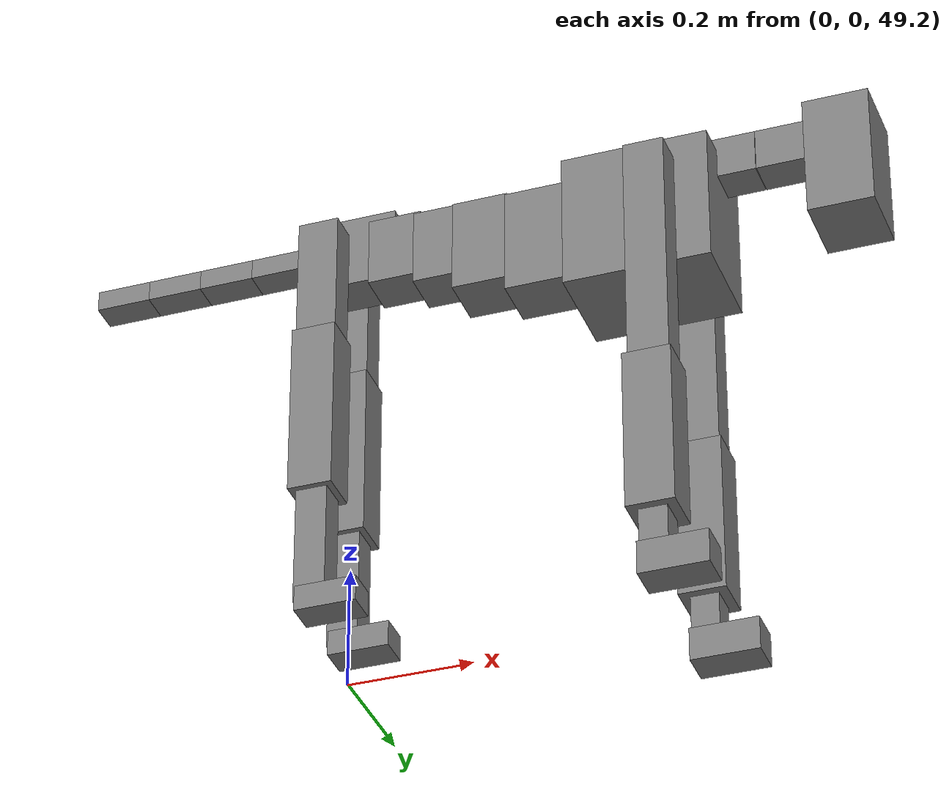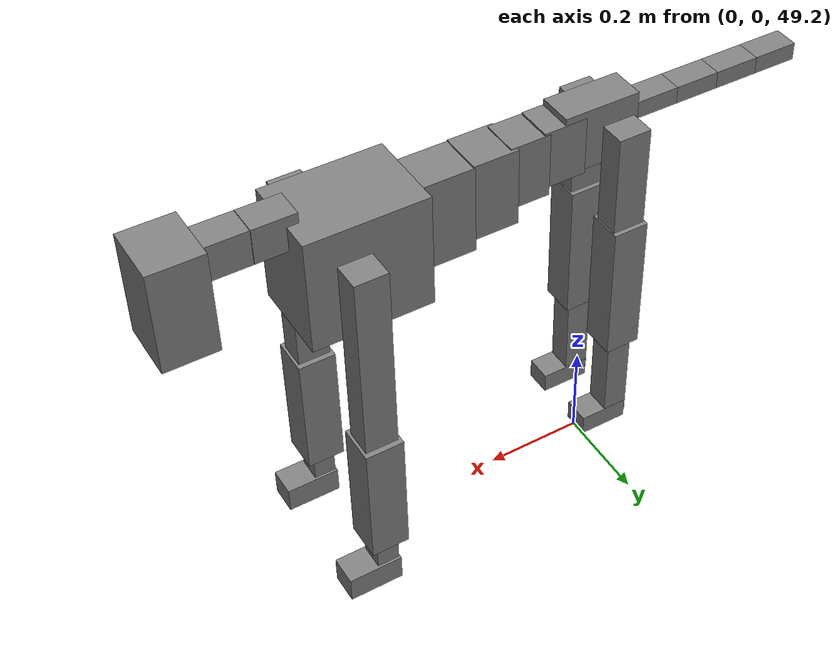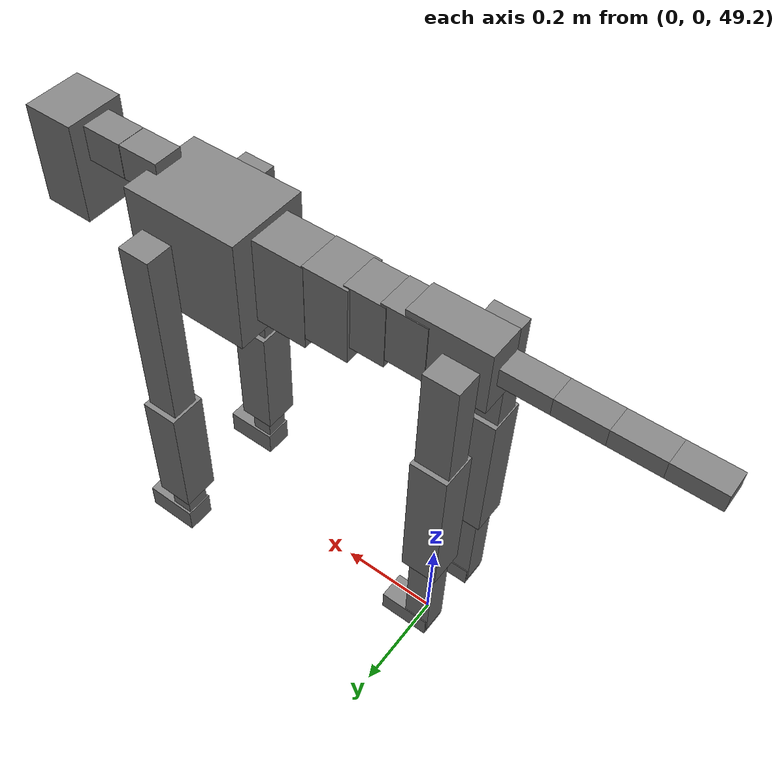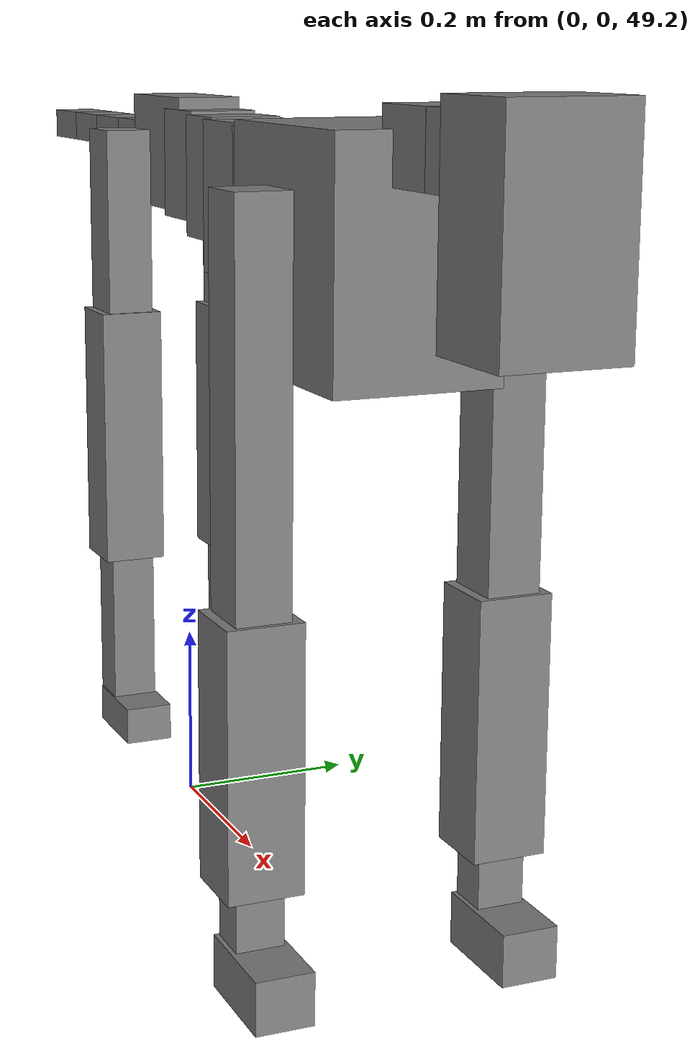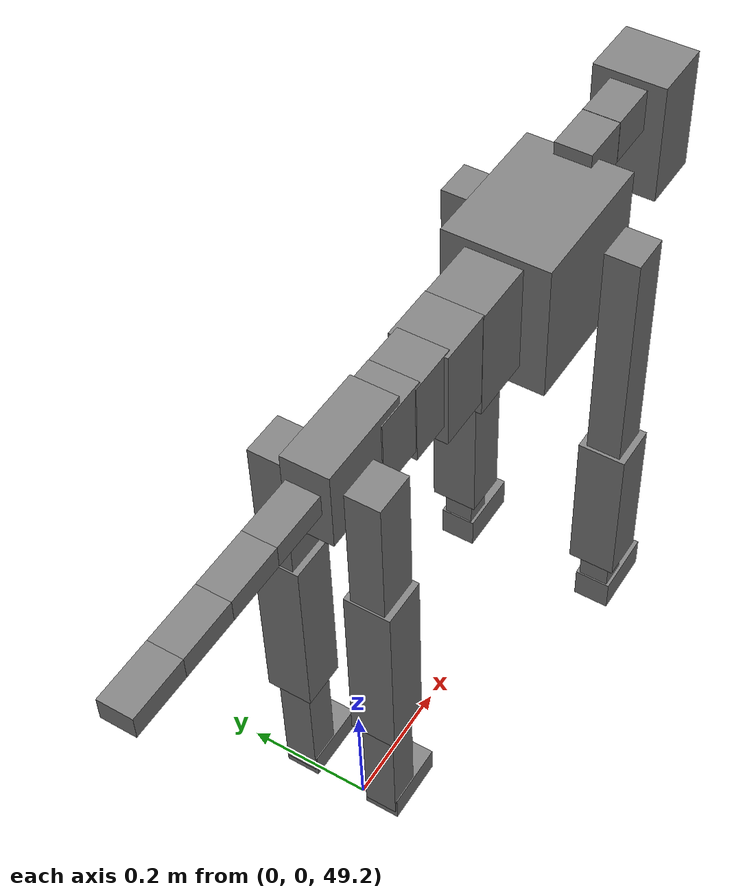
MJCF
<mujoco model="dog">

    <default>
        <joint armature="0.02" stiffness="1" damping="0.2" limited="true"/>
        <geom condim="3" friction="1 0.05 0.05" margin="0.01"/>
        <motor ctrllimited="true" ctrlrange="-1.0 1.0" forcelimited="true" gear="50"/>
    </default>

    <compiler inertiafromgeom="true" angle="radian"/>

    <option timestep="0.016" iterations="50" tolerance="1e-10" solver="Newton" jacobian="dense" cone="pyramidal"/>

    <size nconmax="20000" njmax="60000" nstack="5000000"/>
    <visual>
        <map force="0.1" zfar="30"/>
        <rgba haze="0.15 0.25 0.35 1"/>
        <quality shadowsize="2048"/>
        <global offwidth="800" offheight="800"/>
    </visual>

    <asset>
        <texture type="skybox" builtin="gradient" rgb1="0.3 0.5 0.7" rgb2="0 0 0" width="512" height="512"/>
        <texture name="texplane" type="2d" builtin="checker" rgb1=".2 .3 .4" rgb2=".1 0.15 0.2" width="512" height="512"
                 mark="cross" markrgb=".8 .8 .8"/>
        <texture name="texgeom" type="cube" builtin="flat" mark="cross" width="127" height="1278" rgb1="0.8 0.6 0.4"
                 rgb2="0.8 0.6 0.4" markrgb="1 1 1" random="0.01"/>

        <material name="matplane" reflectance="0.3" texture="texplane" texrepeat="1 1" texuniform="true"/>
        <material name="matgeom" texture="texgeom" texuniform="true" rgba="0.8 0.6 .4 1"/>
    </asset>

    <worldbody>
        <geom name="floor" pos="0 0 0" size="0 0 .25" type="plane" material="matplane" condim="3"/>

        <light directional="false" diffuse=".2 .2 .2" specular="0 0 0" pos="0 0 5" dir="0 0 -1" castshadow="false"/>
        <light mode="targetbodycom" target="torso" directional="false" diffuse=".8 .8 .8" specular="0.3 0.3 0.3"
               pos="0 0 4.0" dir="0 0 -1"/>

        <body name="root" pos="0 0 50">
            <freejoint name="root_1"/>
            <geom type="box" pos="0 0 -0.02" size="0.0774  0.0358  0.063" density="2030"/>

            <body name="spine1" pos="0.054 0 0">
                <joint name="spine1_y" axis="0 1 0" range="0 0.7" limited="true"/>
                <geom type="box" pos="0.02375 0 -0.03" size="0.04375  0.0375  0.05985" density="2030"/>

                <body name="spine2" pos="0.0612 0 0">
                    <joint name="spine2_y" axis="0 1 0" range="-0.15 0.15" limited="true"/>
                    <geom type="box" pos="0.03555  0  -0.04" size="0.04055  0.039  0.06615" density="2030"/>

                    <body name="spine3" pos="0.0730 0 0">
                        <joint name="spine3_y" axis="0 1 0" range="-0.15 0.15" limited="true"/>
                        <geom type="box" pos="0.03555  0  -0.057" size="0.04555  0.0445  0.081" density="2030"/>

                        <body name="spine4" pos="0.0780 0 0">
                            <joint name="spine4_y" axis="0 1 0" range="-0.15 0.15" limited="true"/>
                            <geom type="box" pos="0.05265  0  -0.07" size="0.05265  0.045  0.09135" density="2030"/>

                            <body name="torso" pos="0.1082 0 0">
                                <joint name="torso_y" axis="0 1 0" range="-0.15 0.15" limited="true"/>
                                <geom type="box" pos="0.11925  0  -0.085" size="0.11925  0.085  0.11745"
                                      density="2030"/>

                                <body name="neck1" pos="0.2160  0   0.0180">
                                    <joint name="neck1_y" axis="0 1 0" range="-1.2  -1" limited="true"/>
                                    <geom type="box" pos="0.0423  0  0" size="0.0423  0.03  0.036" density="2325"/>

                                    <body name="neck2" pos="0.0853  0  0">
                                        <joint name="neck2_y" axis="0 1 0" range="0.1  0" limited="true"/>
                                        <geom type="box" pos="0.0423  0  0" size="0.0423  0.03  0.036" density="2325"/>

                                        <body name="head" pos="0.0853  0  0">
                                            <joint name="head_y" axis="0 1 0" range="-0.3  -0.2" limited="true"/>
                                            <geom type="box" pos="0.0531  0  -0.055" size="0.0531  0.06  0.1044"
                                                  density="4030"/>

                                        </body>
                                    </body>
                                </body>

                                <body name="front_shoulder" pos="0.156  0   -0.0480">
                                    <joint name="front_shoulder_y" axis="0 1 0" range="-1 1.5" limited="true"/>
                                    <geom type="box" pos="0 0.13 -0.1846" size="0.0327  0.0280  0.2112" density="1158"/>
                                    <geom type="box" pos="0 -0.13 -0.1846" size="0.0327  0.0280  0.2112"
                                          density="1158"/>

                                    <body name="front_elbow" pos="0  0  -0.3692">
                                        <joint name="front_elbow_y" axis="0 1 0" range="-2 0" limited="true"/>
                                        <geom type="box" pos="0 0.13 -0.1352" size="0.0382  0.0390  0.1352"
                                              density="1081"/>
                                        <geom type="box" pos="0 -0.13 -0.1352" size="0.0382  0.0390  0.1352"
                                              density="1081"/>

                                        <body name="front_wrist" pos="0  0  -0.2704">
                                            <joint name="front_wrist_y" axis="0 1 0" range="-0.2 0" limited="true"/>
                                            <geom type="box" pos="0 0.13 -0.0359" size="0.0225  0.0250  0.0491"
                                                  density="1664"/>
                                            <geom type="box" pos="0 -0.13 -0.0359" size="0.0225  0.0250  0.0491"
                                                  density="1664"/>

                                            <body name="front_finger_end" pos="0  0  -0.0718">
                                                <joint name="front_finger_y" axis="0 1 0" range="-0.4 1"
                                                       limited="true"/>
                                                <geom type="box" pos="0.0300  0.13  -0.0125"
                                                      size="0.0550  0.0300  0.0275" density="1515"/>
                                                <geom type="box" pos="0.0300  -0.13  -0.0125"
                                                      size="0.0550  0.0300  0.0275" density="1515"/>

                                            </body>

                                        </body>
                                    </body>
                                </body>

                            </body>
                        </body>
                    </body>
                </body>
            </body>

            <body name="back_hip" pos="-0.03 0 -0.018">
                <joint name="back_hip_y" axis="0 1 0" range="-1.5 0.3" limited="true"/>
                <geom type="box" pos="0 0.07 -0.1008" size="0.0330  0.0259  0.1236" density="1154"/>
                <geom type="box" pos="0 -0.07 -0.1008" size="0.0330  0.0259  0.1236" density="1154"/>

                <body name="back_knee" pos="0  0  -0.2015">
                    <joint name="back_knee_y" axis="0 1 0" range="0 2.8" limited="true"/>
                    <geom type="box" pos="0 0.07 -0.1321" size="0.0357  0.0352  0.1476" density="1227"/>
                    <geom type="box" pos="0 -0.07 -0.1321" size="0.0357  0.0352  0.1476" density="1227"/>

                    <body name="back_ankle" pos="0  0  -0.2641">
                        <joint name="back_ankle_y" axis="0 1 0" range="-2.2 0" limited="true"/>
                        <geom type="box" pos="0 0.07 -0.1015" size="0.0252  0.0252  0.1127" density="1284"/>
                        <geom type="box" pos="0 -0.07 -0.1015" size="0.0252  0.0252  0.1127" density="1284"/>

                        <body name="back_toe_end" pos="0  0  -0.2029">
                            <joint name="back_toe_y" axis="0 1 0" range="-0.4 1" limited="true"/>
                            <geom type="box" pos="0.0270  0.07  -0.0061" size="0.0496  0.0270  0.0211" density="1515"/>
                            <geom type="box" pos="0.0270  -0.07  -0.0061" size="0.0496  0.0270  0.0211" density="1515"/>

                        </body>
                    </body>
                </body>
            </body>

            <body name="tail1" pos="-0.074 0 -0.006">
                <joint name="tail1_y" axis="0 1 0" range="-0.2 0.2" limited="true"/>
                <geom type="box" pos="-0.0536  0  0" size="0.045  0.025  0.0175" density="1587"/>

                <body name="tail2" pos="-0.09 0 0">
                    <joint name="tail2_y" axis="0 1 0" range="-0.2 0.2" limited="true"/>
                    <geom type="box" pos="-0.0536  0  0" size="0.045  0.025  0.0175" density="1587"/>

                    <body name="tail3" pos="-0.09 0 0">
                        <joint name="tail3_y" axis="0 1 0" range="-0.2 0.2" limited="true"/>
                        <geom type="box" pos="-0.0536  0  0" size="0.045  0.025  0.0175" density="1587"/>

                        <body name="tail4" pos="-0.09 0 0">
                            <joint name="tail4_y" axis="0 1 0" range="-0.2 0.2" limited="true"/>
                            <geom type="box" pos="-0.0536  0  0" size="0.045  0.025  0.0175" density="1587"/>

                        </body>
                    </body>
                </body>
            </body>
        </body>
    </worldbody>

    <actuator>
        <motor joint="spine1_y" forcerange="-150 150     "/>
        <motor joint="spine2_y" forcerange="-150 150     "/>
        <motor joint="spine3_y" forcerange="-150 150     "/>
        <motor joint="spine4_y" forcerange="-150 150     "/>
        <motor joint="torso_y" forcerange="-150 150     "/>
        <motor joint="neck1_y" forcerange="-100 100       "/>
        <motor joint="neck2_y" forcerange="-100 100       "/>
        <motor joint="head_y" forcerange="-150 150       "/>
        <motor joint="front_shoulder_y" forcerange="-145.01 141.33"/>
        <motor joint="front_elbow_y" forcerange="-197.74 185.93"/>
        <motor joint="front_wrist_y" forcerange="-74.02 126.28"/>
        <motor joint="front_finger_y" forcerange="-32.05 88.07"/>
        <motor joint="back_hip_y" forcerange="-283.42 261.72"/>
        <motor joint="back_knee_y" forcerange="-352.53 360.00"/>
        <motor joint="back_angle_y" forcerange="-86.04 216.50"/>
        <motor joint="back_toe_y" forcerange="-89.89 46.47"/>
        <motor joint="tail1_y" forcerange="-50 50     "/>
        <motor joint="tail2_y" forcerange="-50 50     "/>
        <motor joint="tail3_y" forcerange="-50 50     "/>
        <motor joint="tail4_y" forcerange="-50 50     "/>
    </actuator>
</mujoco>
